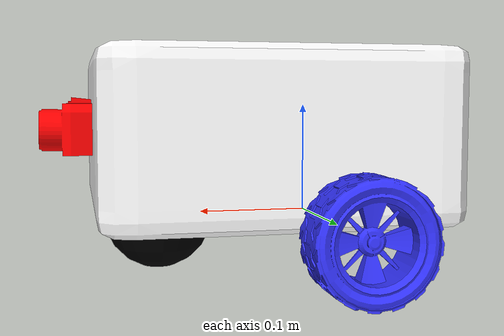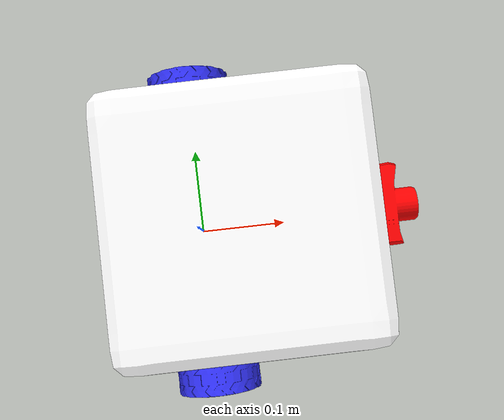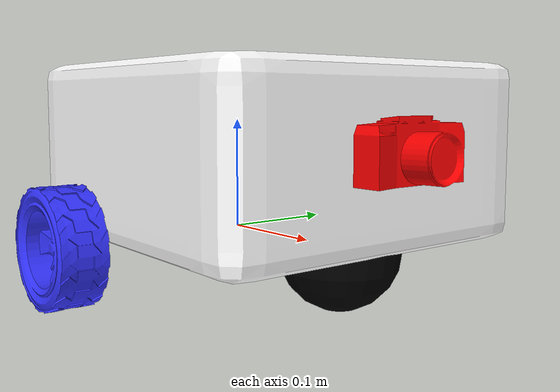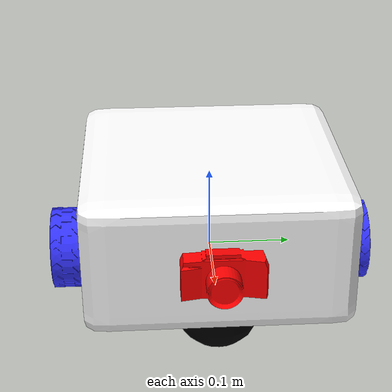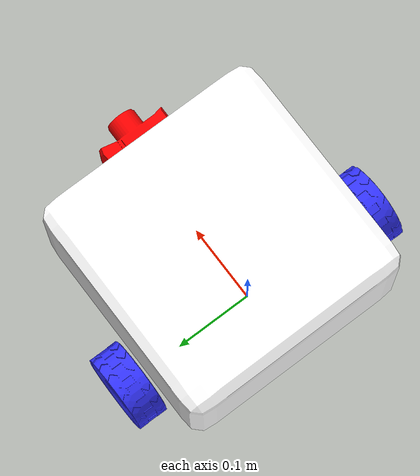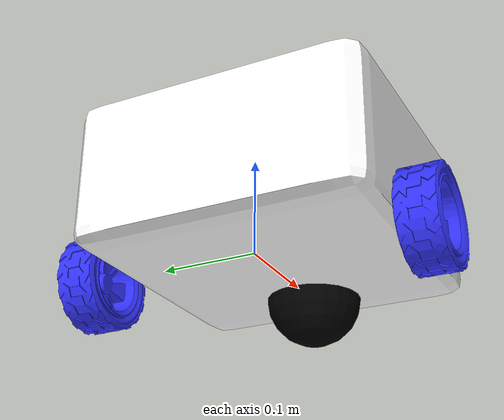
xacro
<?xml version="1.0"?>
<robot xmlns:xacro="http://www.ros.org/wiki/xacro"  name="robot">

    <xacro:include filename="robot_core.xacro" />

    <xacro:include filename="ros2_control.xacro"/>

    <xacro:include filename="camera.xacro"/>

</robot>

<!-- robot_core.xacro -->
<robot xmlns:xacro="http://www.ros.org/wiki/xacro">

    <xacro:include filename="inertial_macros.xacro" />

    <material name="white">
        <color rgba="1 1 1 1" />
    </material>

    <material name="orange">
        <color rgba="1 0.3 0.1 1" />
    </material>

    <material name="blue">
        <color rgba="0.2 0.2 1 1" />
    </material>

    <material name="black">
        <color rgba="0 0 0 1" />
    </material>

    <material name="red">
        <color rgba="1 0 0 1" />
    </material>

    <!-- base link -->

    <link name="base_link">
    </link>

    <!-- chassis link -->

    <joint name="base_chassis_joint" type="fixed">

        <parent link="base_link" />
        <child link="chassis_link" />
        <origin xyz="-0.1 0 0" />

    </joint>

    <link name="chassis_link">

        <visual>
            <geometry>
                <mesh filename='/home/nusshao/dev_ws/src/tracking_project/description/chassis.dae' scale='1 1 1'/>
            </geometry>
            <material name="white" />
            <origin xyz="0.15 0 0.075" />
        </visual>

        <collision>
            <geometry>
                <box size="0.3 0.3 0.15" />
            </geometry>
            <origin xyz="0.15 0 0.075" />
        </collision>

        <xacro:inertial_box mass="0.5" x="0.3" y="0.3" z="0.15">
            <origin xyz="0.15 0 0.075" rpy="0 0 0" />
        </xacro:inertial_box>

    </link>

    <gazebo> reference="chassis_link"
        <material>Gazebo/White</material>
    </gazebo>

    <!-- left wheel link -->

    <joint name="base_left_wheel_joint" type="continuous">

        <parent link="base_link" />
        <child link="left_wheel_link" />
        <origin xyz="0 0.175 0" rpy="-${pi/2} 0 0" />
        <axis xyz="0 0 1" />

    </joint>

    <link name="left_wheel_link">

        <visual>
            <geometry>
                <mesh filename='/home/nusshao/dev_ws/src/tracking_project/description/wheel.dae' scale='1 1 1'/>
            </geometry>
            <material name="blue" />
        </visual>

        <collision>
            <geometry>
                <cylinder radius="0.05" length="0.04" />
            </geometry>
        </collision>

        <xacro:inertial_cylinder mass="0.1" length="0.04" radius="0.05">
            <origin xyz="0 0 0" rpy="0 0 0" />
        </xacro:inertial_cylinder>

    </link>

    <gazebo reference="left_wheel_link">
    </gazebo>

        <!-- right wheel link -->

        <joint name="base_right_wheel_joint" type="continuous">

            <parent link="base_link" />
            <child link="right_wheel_link" />
            <origin xyz="0 -0.175 0" rpy="${pi/2} 0 0" />
            <axis xyz="0 0 -1" />

        </joint>

        <link name="right_wheel_link">

            <visual>
                <geometry>
                    <mesh filename='/home/nusshao/dev_ws/src/tracking_project/description/wheel.dae' scale='1 1 1'/>
                </geometry>
                <material name="blue" />
            </visual>

            <collision>
                <geometry>
                    <cylinder radius="0.05" length="0.04" />
                </geometry>
            </collision>

            <xacro:inertial_cylinder mass="0.1" length="0.04" radius="0.05">
                <origin xyz="0 0 0" rpy="0 0 0" />
            </xacro:inertial_cylinder>

        </link>

        <gazebo reference="right_wheel_link">
        </gazebo>

        <!-- caster wheel link -->

        <joint name="chassis_caster_wheel_joint" type="fixed">

            <parent link="chassis_link" />
            <child link="caster_wheel_link" />
            <origin xyz="0.24 0 0" />

        </joint>

        <link name="caster_wheel_link">

            <visual>
                <geometry>
                    <sphere radius="0.05" />
                </geometry>
                <material name="black" />
            </visual>

            <collision>
                <geometry>
                    <sphere radius="0.05" />
                </geometry>
            </collision>

            <xacro:inertial_sphere mass="0.1" radius="0.05">
                <origin xyz="0 0 0" rpy="0 0 0" />
            </xacro:inertial_sphere>

        </link>

        <gazebo reference="caster_wheel_link">
            <material>Gazebo/Black</material>
            <mu1 value="0.001" />
            <mu2 value="0.001" />
        </gazebo>

</robot>

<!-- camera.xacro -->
<robot xmlns:xacro="http://www.ros.org/wiki/xacro">

    <joint name="chassis_camera_joint" type="fixed">

        <parent link="chassis_link" />
        <child link="camera_link" />
        <origin xyz="0.305 0 0.08" rpy="0 0 0" />

    </joint>

    <link name="camera_link">

        <visual>
            <geometry>
                <mesh filename='/home/nusshao/dev_ws/src/tracking_project/description/camera.dae' scale='3 3 3'/>
            </geometry>
            <material name="red" />
        </visual>

    </link>

    <joint name="chassis_camera_optical_joint" type="fixed">

        <parent link="camera_link" />
        <child link="camera_optical_link" />
        <origin xyz="0 0 0" rpy="${-pi/2} 0 ${-pi/2}" />

    </joint>

    <link name="camera_optical_link"></link>

    <gazebo reference="camera_link">

        <!-- Color definition in Gazebo -->
        <!-- Sensor tag for camera -->
        <sensor name="camera" type="camera">

            <pose> 0 0 0 0 0 0 </pose>
            <visualize>true</visualize>
            <update_rate>10</update_rate>
            <!-- camera params -->
            <camera>
                <!-- Field of Vision -->
                <horizontal_fov>1.089</horizontal_fov>
                <!-- image params -->
                <image>
                    <format>R8G8B8</format>
                    <width>640</width>
                    <height>480</height>
                </image>
                <!-- image clip -->
                <clip>
                    <near>0.05</near>
                    <far>8.0</far>
                </clip>

            </camera>
            <!-- gazebo camera control plugin -->
            <plugin name="camera_controller" filename="libgazebo_ros_camera.so">
                <ros>
                    <namespace>robot</namespace>
                </ros>
                <frame_name>camera_link_optical</frame_name>
            </plugin>

        </sensor>

    </gazebo>

</robot>
